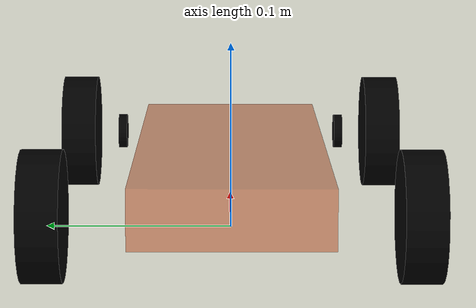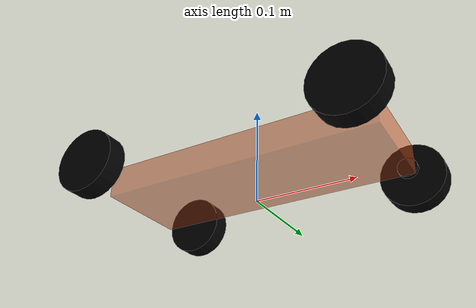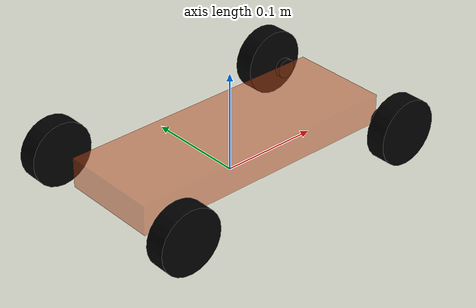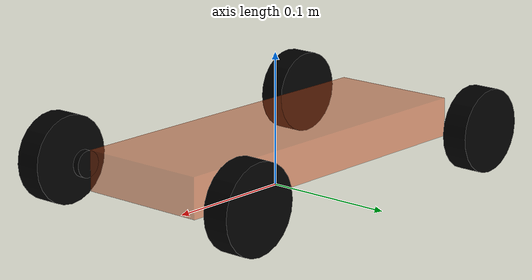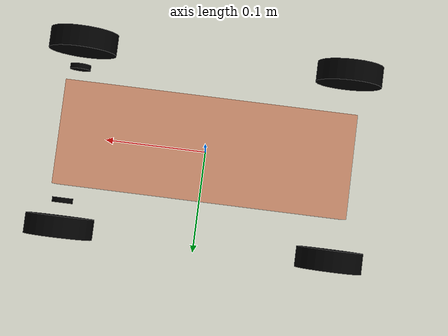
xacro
<?xml version="1.0" encoding="utf-8"?>

<robot name="racebot" xmlns:xacro="http://www.ros.org/wiki/xacro">

    <xacro:include filename="$(find racebot_description)/urdf/twist/macros.xacro" />

    <link name="base_footprint">
    </link>

    <link name="base_link">
        <visual>
            <geometry>
                <box size="0.28 0.1 0.03"/>
            </geometry>
            <origin xyz="0 0 0" rpy="0 0 0" />
            <material name="yellow">
                <color rgba="0.8 0.3 0.1 0.5" />
            </material>
        </visual>
        <collision>
            <geometry>
                <box size="0.28 0.1 0.03" />
            </geometry>
            <origin xyz="0.0 0.0 0.0" rpy="0.0 0.0 0.0" />
        </collision>
        <inertial>
            <origin xyz="0 0 0" />
            <mass value="4" />
            <inertia ixx="0.0264" ixy="0" ixz="0" iyy="0.0294" iyz="0" izz="0.00364" />
        </inertial>

    </link>

    <joint name="base_link2base_footprint" type="fixed">
        <parent link="base_footprint" />
        <child link="base_link"/>
        <origin xyz="0 0 0.032" />
    </joint>

       <link name="left_steering_hinge">
        <visual>
            <geometry>
                <cylinder radius="0.01" length="0.005" />
            </geometry>
            <origin xyz="0 0 0" rpy="1.57 0 0" />
            <material name="black">
                <color rgba="0.0 0.0 0.0 1.0" />
            </material>
        </visual>
        <collision>
            <geometry>
                <cylinder radius="0.01" length="0.005" />
            </geometry>
            <origin xyz="0.0 0.0 0.0" rpy="1.57 0.0 0.0" />
        </collision>
        <inertial>
            <origin xyz="0 0 0" />
            <mass value="1" />
            <inertia ixx="2.7E-05" ixy="0" ixz="0" iyy="2.7E-05" iyz="0" izz="5E-05" />
        </inertial>
    </link>

    <joint name="left_steering_hinge_joint" type="revolute">
        <parent link="base_link" />
        <child link="left_steering_hinge" />
        <origin xyz="0.13 0.065 0" />
        <axis xyz="0 0 1" />
        <limit lower="-0.6" upper="0.6" effort="2.0" velocity="100.0"/>
    </joint>

    <link name="left_front_wheel">
        <visual>
            <geometry>
                <cylinder radius="0.033" length="0.02" />
            </geometry>
            <origin xyz="0 0 0" rpy="1.57 0 0" />
            <material name="black">
                <color rgba="0.0 0.0 0.0 1.0" />
            </material>
        </visual>
        <collision>
            <geometry>
                <cylinder radius="0.032" length="0.02" />
            </geometry>
            <origin xyz="0.0 0.0 0.0" rpy="1.57 0.0 0.0" />
        </collision>
        <inertial>
            <origin xyz="0 0 0" />
            <mass value="2.0" />
            <inertia ixx="6.64E-04" ixy="0" ixz="0" iyy="6.64E-04" iyz="0" izz="1.02E-03" />
        </inertial>
    </link>

    <joint name="left_front_wheel_joint" type="continuous">
        <parent link="left_steering_hinge" />
        <child link="left_front_wheel" />
        <origin xyz="0 0.025 0" />
        <axis xyz="0 1 0" />
        <limit effort="10" velocity="1000" />
    </joint>

<link name="right_steering_hinge">
        <visual>
            <geometry>
                 <cylinder radius="0.01" length="0.005" />
            </geometry>
            <origin xyz="0 0 0" rpy="1.57 0 0" />
            <material name="black">
                <color rgba="0.0 0.0 0.0 1.0" />
            </material>
        </visual>
        <collision>
            <geometry>
                <cylinder radius="0.01" length="0.005" />
            </geometry>
            <origin xyz="0.0 0.0 0.0" rpy="1.57 0.0 0.0" />
        </collision>
        <inertial>
            <origin xyz="0 0 0" />
            <mass value="1" />
            <inertia ixx="2.7E-05" ixy="0" ixz="0" iyy="2.7E-05" iyz="0" izz="5E-05" />
        </inertial>
    </link>

    <joint name="right_steering_hinge_joint" type="revolute">
        <parent link="base_link" />
        <child link="right_steering_hinge" />
        <origin xyz="0.13 -0.065 0" />
        <axis xyz="0 0 1" />
        <limit lower="-0.6" upper="0.6" effort="2.0" velocity="100.0"/>
    </joint>

     <link name="right_front_wheel">
        <visual>
            <geometry>
                <cylinder radius="0.033" length="0.02" />
            </geometry>
            <origin xyz="0 0 0" rpy="1.57 0 0" />
            <material name="black">
                <color rgba="0.0 0.0 0.0 1.0" />
            </material>
        </visual>
        <collision>
            <geometry>
                <cylinder radius="0.032" length="0.02" />
            </geometry>
            <origin xyz="0.0 0.0 0.0" rpy="1.57 0.0 0.0" />
        </collision>
        <inertial>
            <origin xyz="0 0 0" />
            <mass value="2.0" />
            <inertia ixx="6.64E-04" ixy="0" ixz="0" iyy="6.64E-04" iyz="0" izz="1.02E-03" />
        </inertial>
    </link>

    <joint name="right_front_wheel_joint" type="continuous">
        <parent link="right_steering_hinge" />
        <child link="right_front_wheel" />
        <origin xyz="0 -0.025 0" />
        <axis xyz="0 1 0" />
        <limit effort="10" velocity="1000" />
    </joint>

    <link name="left_rear_wheel">
        <visual>
            <geometry>
                <cylinder radius="0.032" length="0.02" />
            </geometry>
            <origin xyz="0 0 0" rpy="1.57 0 0" />
            <material name="black">
                <color rgba="0.0 0.0 0.0 1.0" />
            </material>
        </visual>
        <collision>
            <geometry>
                <cylinder radius="0.032" length="0.02" />
            </geometry>
            <origin xyz="0.0 0.0 0.0" rpy="1.57 0.0 0.0" />
        </collision>
        <inertial>
            <origin xyz="0 0 0" />
            <mass value="2.0" />
            <inertia ixx="6.64E-04" ixy="0" ixz="0" iyy="6.64E-04" iyz="0" izz="1.02E-03" />
        </inertial>
    </link>

    <joint name="left_rear_wheel_joint" type="continuous">
        <parent link="base_link" />
        <child link="left_rear_wheel" />
        <origin xyz="-0.13 0.09 0" />
        <axis xyz="0 1 0" />
        <limit effort="10" velocity="1000" />
    </joint>

    <link name="right_rear_wheel">
        <visual>
            <geometry>
                <cylinder radius="0.032" length="0.02" />
            </geometry>
            <origin xyz="0 0 0" rpy="1.57 0 0" />
            <material name="black">
                <color rgba="0.0 0.0 0.0 1.0" />
            </material>
        </visual>
        <collision>
            <geometry>
                <cylinder radius="0.032" length="0.02" />
            </geometry>
            <origin xyz="0.0 0.0 0.0" rpy="1.57 0.0 0.0" />
        </collision>
        <inertial>
            <origin xyz="0 0 0" />
            <mass value="2.0" />
            <inertia ixx="6.64E-04" ixy="0" ixz="0" iyy="6.64E-04" iyz="0" izz="1.02E-03" />
        </inertial>
    </link>

    <joint name="right_rear_wheel_joint" type="continuous">
        <parent link="base_link" />
        <child link="right_rear_wheel" />
        <origin xyz="-0.13 -0.09 0" />
        <axis xyz="0 1 0" />
        <limit effort="10" velocity="1000" />
    </joint>

  <xacro:include filename="$(find racebot_description)/urdf/twist/racecar.gazebo" />

</robot>
